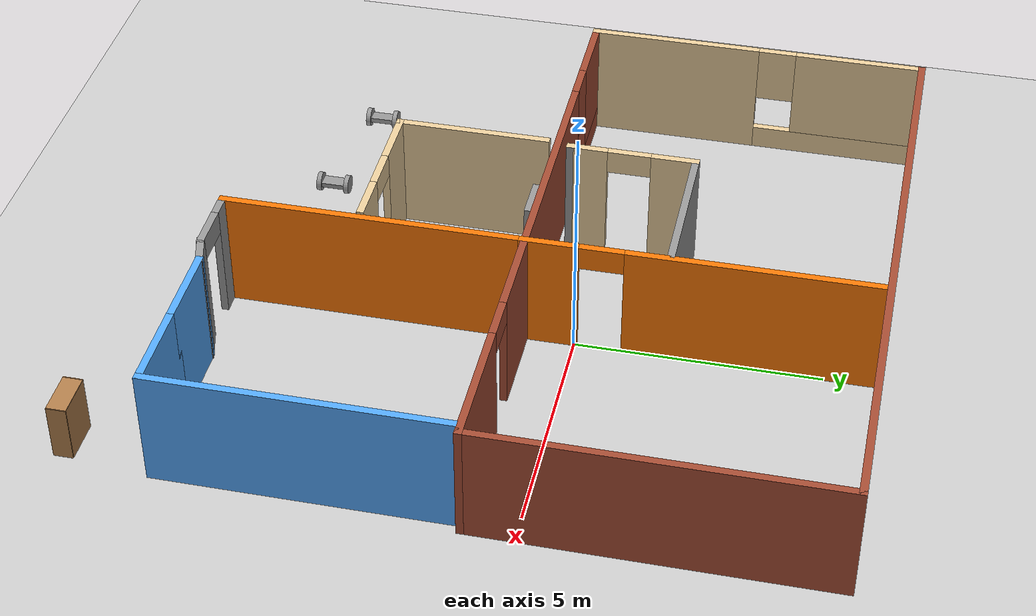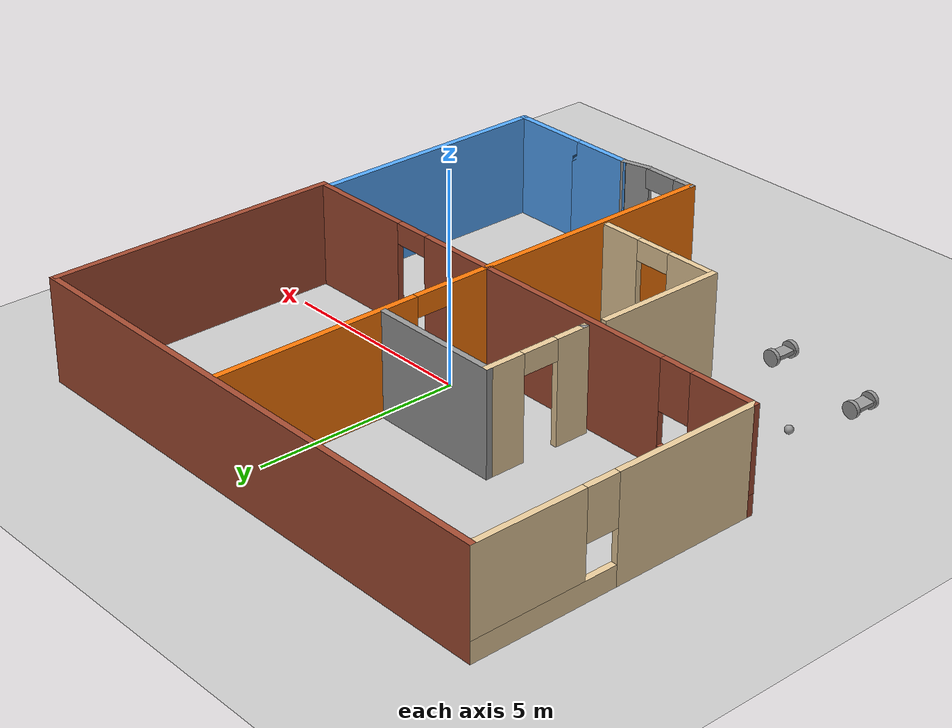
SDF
<sdf version="1.6">
 <world name="default">
  <plugin name="hello" filename="libhello.so"/>
  <light name="sun" type="directional">
   <pose>0 0 10 0 -0 0</pose>
   <diffuse>0.8 0.8 0.8 1</diffuse>
   <specular>0.2 0.2 0.2 1</specular>
   <attenuation>
    <range>1000</range>
    <constant>0.9</constant>
    <linear>0.01</linear>
    <quadratic>0.001</quadratic>
   </attenuation>
   <direction>-0.5 0.1 -0.9</direction>
  </light>
  <model name="ground_plane">
   <static>1</static>
   <link name="link">
    <collision name="collision">
     <geometry><plane><normal>0 0 1</normal><size>100 100</size></plane></geometry>
     <surface>
      <contact><collide_bitmask>65535</collide_bitmask></contact>
      <friction><ode><mu>100</mu><mu2>50</mu2></ode></friction>
     </surface>
    </collision>
    <visual name="visual">
     <cast_shadows>0</cast_shadows>
     <geometry><plane><normal>0 0 1</normal><size>100 100</size></plane></geometry>
     <material>
      <script><uri>file://media/materials/scripts/gazebo.material</uri><name>Gazebo/Grey</name></script>
     </material>
    </visual>
   </link>
  </model>
  <gravity>0 0 -9.8</gravity>
  <magnetic_field>6e-06 2.3e-05 -4.2e-05</magnetic_field>
  <atmosphere type="adiabatic"/>
  <physics name="default_physics" default="0" type="ode">
   <max_step_size>0.001</max_step_size>
   <real_time_factor>1</real_time_factor>
   <real_time_update_rate>1000</real_time_update_rate>
  </physics>
  <scene><ambient>0.4 0.4 0.4 1</ambient><background>0.7 0.7 0.7 1</background><shadows>1</shadows></scene>
  <spherical_coordinates>
   <surface_model>EARTH_WGS84</surface_model>
   <latitude_deg>0</latitude_deg>
   <longitude_deg>0</longitude_deg>
   <elevation>0</elevation>
   <heading_deg>0</heading_deg>
  </spherical_coordinates>
  <model name="Home">
   <pose>-1.01079 -0.552783 0 0 -0 0</pose>
   <link name="Door_3">
    <collision name="Door_3_Collision">
     <geometry><box><size>0.9 0.17 2</size></box></geometry>
     <pose>0 0 1 0 -0 0</pose>
    </collision>
    <visual name="Door_3_Visual">
     <pose>0 0 1 0 -0 0</pose>
     <geometry><box><size>0.9 0.17 2</size></box></geometry>
     <material>
      <script><uri>file://media/materials/scripts/gazebo.material</uri><name>Gazebo/Grey</name></script>
     </material>
    </visual>
    <pose>-0.975524 -0.723427 0 0 -0 0</pose>
   </link>
   <link name="Wall_15">
    <collision name="Wall_15_Collision">
     <geometry><box><size>13.25 0.15 2.5</size></box></geometry>
     <pose>0 0 1.25 0 -0 0</pose>
    </collision>
    <visual name="Wall_15_Visual">
     <pose>0 0 1.25 0 -0 0</pose>
     <geometry><box><size>13.25 0.15 2.5</size></box></geometry>
     <material>
      <script><uri>file://media/materials/scripts/gazebo.material</uri><name>Gazebo/Bricks</name></script>
      <ambient>1 0.764706 0.305882 1</ambient>
     </material>
     <meta><layer>0</layer></meta>
    </visual>
    <pose>0 6.63211 0 0 -0 0</pose>
   </link>
   <link name="Wall_16">
    <collision name="Wall_16_Collision">
     <geometry><box><size>7.25 0.15 2.5</size></box></geometry>
     <pose>0 0 1.25 0 -0 0</pose>
    </collision>
    <visual name="Wall_16_Visual">
     <pose>0 0 1.25 0 -0 0</pose>
     <geometry><box><size>7.25 0.15 2.5</size></box></geometry>
     <material>
      <script><uri>file://media/materials/scripts/gazebo.material</uri><name>Gazebo/Bricks</name></script>
      <ambient>1 0.764706 0.305882 1</ambient>
     </material>
     <meta><layer>0</layer></meta>
    </visual>
    <pose>6.55 3.08211 0 0 0 -1.5708</pose>
   </link>
   <link name="Wall_17">
    <pose>0 -0.467893 0 0 -0 3.14159</pose>
    <visual name="Wall_17_Visual_0">
     <pose>-5.23558 0 1.25 0 -0 0</pose>
     <geometry><box><size>2.77884 0.15 2.5</size></box></geometry>
     <material>
      <script><uri>file://media/materials/scripts/gazebo.material</uri><name>Gazebo/Bricks</name></script>
      <ambient>0.921569 0.807843 0.615686 1</ambient>
     </material>
     <meta><layer>0</layer></meta>
    </visual>
    <collision name="Wall_17_Collision_0">
     <geometry><box><size>2.77884 0.15 2.5</size></box></geometry>
     <pose>-5.23558 0 1.25 0 -0 0</pose>
    </collision>
    <visual name="Wall_17_Visual_1">
     <pose>0.607303 0 1.25 0 -0 0</pose>
     <geometry><box><size>7.10693 0.15 2.5</size></box></geometry>
     <material>
      <script><uri>file://media/materials/scripts/gazebo.material</uri><name>Gazebo/Bricks</name></script>
      <ambient>0.921569 0.807843 0.615686 1</ambient>
     </material>
     <meta><layer>0</layer></meta>
    </visual>
    <collision name="Wall_17_Collision_1">
     <geometry><box><size>7.10693 0.15 2.5</size></box></geometry>
     <pose>0.607303 0 1.25 0 -0 0</pose>
    </collision>
    <visual name="Wall_17_Visual_2">
     <pose>5.39288 0 0.25 0 -0 0</pose>
     <geometry><box><size>2.46423 0.15 0.5</size></box></geometry>
     <material>
      <script><uri>file://media/materials/scripts/gazebo.material</uri><name>Gazebo/Bricks</name></script>
      <ambient>0.921569 0.807843 0.615686 1</ambient>
     </material>
     <meta><layer>0</layer></meta>
    </visual>
    <collision name="Wall_17_Collision_2">
     <geometry><box><size>2.46423 0.15 0.5</size></box></geometry>
     <pose>5.39288 0 0.25 0 -0 0</pose>
    </collision>
    <visual name="Wall_17_Visual_3">
     <pose>5.79288 0 1.5 0 -0 0</pose>
     <geometry><box><size>1.66423 0.15 2</size></box></geometry>
     <material>
      <script><uri>file://media/materials/scripts/gazebo.material</uri><name>Gazebo/Bricks</name></script>
      <ambient>0.921569 0.807843 0.615686 1</ambient>
     </material>
     <meta><layer>0</layer></meta>
    </visual>
    <collision name="Wall_17_Collision_3">
     <geometry><box><size>1.66423 0.15 2</size></box></geometry>
     <pose>5.79288 0 1.5 0 -0 0</pose>
    </collision>
    <visual name="Wall_17_Visual_4">
     <pose>4.56077 0 1.9 0 -0 0</pose>
     <geometry><box><size>0.8 0.15 1.2</size></box></geometry>
     <material>
      <script><uri>file://media/materials/scripts/gazebo.material</uri><name>Gazebo/Bricks</name></script>
      <ambient>0.921569 0.807843 0.615686 1</ambient>
     </material>
     <meta><layer>0</layer></meta>
    </visual>
    <collision name="Wall_17_Collision_4">
     <geometry><box><size>0.8 0.15 1.2</size></box></geometry>
     <pose>4.56077 0 1.9 0 -0 0</pose>
    </collision>
    <visual name="Wall_17_Visual_5">
     <pose>-3.39616 0 2.25 0 -0 0</pose>
     <geometry><box><size>0.9 0.15 0.5</size></box></geometry>
     <material>
      <script><uri>file://media/materials/scripts/gazebo.material</uri><name>Gazebo/Bricks</name></script>
      <ambient>0.921569 0.807843 0.615686 1</ambient>
     </material>
     <meta><layer>0</layer></meta>
    </visual>
    <collision name="Wall_17_Collision_5">
     <geometry><box><size>0.9 0.15 0.5</size></box></geometry>
     <pose>-3.39616 0 2.25 0 -0 0</pose>
    </collision>
   </link>
   <link name="Wall_18">
    <pose>-6.55 3.08211 0 0 -0 1.5708</pose>
    <visual name="Wall_18_Visual_0">
     <pose>-1.78725 0 1.25 0 -0 0</pose>
     <geometry><box><size>3.6755 0.15 2.5</size></box></geometry>
     <material>
      <script><uri>file://media/materials/scripts/gazebo.material</uri><name>Gazebo/Grey</name></script>
      <ambient>0.921569 0.807843 0.615686 1</ambient>
     </material>
     <meta><layer>0</layer></meta>
    </visual>
    <collision name="Wall_18_Collision_0">
     <geometry><box><size>3.6755 0.15 2.5</size></box></geometry>
     <pose>-1.78725 0 1.25 0 -0 0</pose>
    </collision>
    <visual name="Wall_18_Visual_1">
     <pose>1.83775 0 0.25 0 -0 0</pose>
     <geometry><box><size>3.5745 0.15 0.5</size></box></geometry>
     <material>
      <script><uri>file://media/materials/scripts/gazebo.material</uri><name>Gazebo/Grey</name></script>
      <ambient>0.921569 0.807843 0.615686 1</ambient>
     </material>
     <meta><layer>0</layer></meta>
    </visual>
    <collision name="Wall_18_Collision_1">
     <geometry><box><size>3.5745 0.15 0.5</size></box></geometry>
     <pose>1.83775 0 0.25 0 -0 0</pose>
    </collision>
    <visual name="Wall_18_Visual_2">
     <pose>2.23775 0 1.5 0 -0 0</pose>
     <geometry><box><size>2.7745 0.15 2</size></box></geometry>
     <material>
      <script><uri>file://media/materials/scripts/gazebo.material</uri><name>Gazebo/Grey</name></script>
      <ambient>0.921569 0.807843 0.615686 1</ambient>
     </material>
     <meta><layer>0</layer></meta>
    </visual>
    <collision name="Wall_18_Collision_2">
     <geometry><box><size>2.7745 0.15 2</size></box></geometry>
     <pose>2.23775 0 1.5 0 -0 0</pose>
    </collision>
    <visual name="Wall_18_Visual_3">
     <pose>0.450499 0 1.9 0 -0 0</pose>
     <geometry><box><size>0.8 0.15 1.2</size></box></geometry>
     <material>
      <script><uri>file://media/materials/scripts/gazebo.material</uri><name>Gazebo/Grey</name></script>
      <ambient>0.921569 0.807843 0.615686 1</ambient>
     </material>
     <meta><layer>0</layer></meta>
    </visual>
    <collision name="Wall_18_Collision_3">
     <geometry><box><size>0.8 0.15 1.2</size></box></geometry>
     <pose>0.450499 0 1.9 0 -0 0</pose>
    </collision>
   </link>
   <link name="Wall_20">
    <collision name="Wall_20_Collision">
     <geometry><box><size>6.25 0.15 2.5</size></box></geometry>
     <pose>0 0 1.25 0 -0 0</pose>
    </collision>
    <visual name="Wall_20_Visual">
     <pose>0 0 1.25 0 -0 0</pose>
     <geometry><box><size>6.25 0.15 2.5</size></box></geometry>
     <material>
      <script><uri>file://media/materials/scripts/gazebo.material</uri><name>Gazebo/Grey</name></script>
      <ambient>0.996078 0.47451 0.0196078 1</ambient>
     </material>
     <meta><layer>0</layer></meta>
    </visual>
    <pose>0.990578 -3.56525 0 0 0 -1.5708</pose>
   </link>
   <link name="Wall_21">
    <pose>1.66558 -6.61525 0 0 -0 0</pose>
    <visual name="Wall_21_Visual_0">
     <pose>-0.474888 0 1.25 0 -0 0</pose>
     <geometry><box><size>0.550224 0.15 2.5</size></box></geometry>
     <material>
      <script><uri>file://media/materials/scripts/gazebo.material</uri><name>Gazebo/Grey</name></script>
      <ambient>1 1 1 1</ambient>
     </material>
     <meta><layer>0</layer></meta>
    </visual>
    <collision name="Wall_21_Collision_0">
     <geometry><box><size>0.550224 0.15 2.5</size></box></geometry>
     <pose>-0.474888 0 1.25 0 -0 0</pose>
    </collision>
    <visual name="Wall_21_Visual_1">
     <pose>0.725112 0 1.25 0 -0 0</pose>
     <geometry><box><size>0.049776 0.15 2.5</size></box></geometry>
     <material>
      <script><uri>file://media/materials/scripts/gazebo.material</uri><name>Gazebo/Grey</name></script>
      <ambient>1 1 1 1</ambient>
     </material>
     <meta><layer>0</layer></meta>
    </visual>
    <collision name="Wall_21_Collision_1">
     <geometry><box><size>0.049776 0.15 2.5</size></box></geometry>
     <pose>0.725112 0 1.25 0 -0 0</pose>
    </collision>
    <visual name="Wall_21_Visual_2">
     <pose>0.250224 0 2.25 0 -0 0</pose>
     <geometry><box><size>0.9 0.15 0.5</size></box></geometry>
     <material>
      <script><uri>file://media/materials/scripts/gazebo.material</uri><name>Gazebo/Grey</name></script>
      <ambient>1 1 1 1</ambient>
     </material>
     <meta><layer>0</layer></meta>
    </visual>
    <collision name="Wall_21_Collision_2">
     <geometry><box><size>0.9 0.15 0.5</size></box></geometry>
     <pose>0.250224 0 2.25 0 -0 0</pose>
    </collision>
   </link>
   <link name="Wall_22">
    <collision name="Wall_22_Collision">
     <geometry><box><size>0.75 0.15 2.5</size></box></geometry>
     <pose>0 0 1.25 0 -0 0</pose>
    </collision>
    <visual name="Wall_22_Visual">
     <pose>0 0 1.25 0 -0 0</pose>
     <geometry><box><size>0.75 0.15 2.5</size></box></geometry>
     <material>
      <script><uri>file://media/materials/scripts/gazebo.material</uri><name>Gazebo/Grey</name></script>
      <ambient>1 1 1 1</ambient>
     </material>
     <meta><layer>0</layer></meta>
    </visual>
    <pose>2.63036 -6.53761 0 0 -0 0.261799</pose>
   </link>
   <link name="Wall_23">
    <collision name="Wall_23_Collision">
     <geometry><box><size>1.75 0.15 2.5</size></box></geometry>
     <pose>0 0 1.25 0 -0 0</pose>
    </collision>
    <visual name="Wall_23_Visual">
     <pose>0 0 1.25 0 -0 0</pose>
     <geometry><box><size>1.75 0.15 2.5</size></box></geometry>
     <material>
      <script><uri>file://media/materials/scripts/gazebo.material</uri><name>Gazebo/Grey</name></script>
      <ambient>0.333333 0.666667 1 1</ambient>
     </material>
     <meta><layer>0</layer></meta>
    </visual>
    <pose>3.72013 -6.45996 0 0 -0 0</pose>
   </link>
   <link name="Wall_25">
    <collision name="Wall_25_Collision">
     <geometry><box><size>2 0.15 2.5</size></box></geometry>
     <pose>0 0 1.25 0 -0 0</pose>
    </collision>
    <visual name="Wall_25_Visual">
     <pose>0 0 1.25 0 -0 0</pose>
     <geometry><box><size>2 0.15 2.5</size></box></geometry>
     <material>
      <script><uri>file://media/materials/scripts/gazebo.material</uri><name>Gazebo/Grey</name></script>
      <ambient>0.333333 0.666667 1 1</ambient>
     </material>
     <meta><layer>0</layer></meta>
    </visual>
    <pose>5.44513 -6.45996 0 0 -0 0</pose>
   </link>
   <link name="Wall_26">
    <collision name="Wall_26_Collision">
     <geometry><box><size>6 0.15 2.5</size></box></geometry>
     <pose>0 0 1.25 0 -0 0</pose>
    </collision>
    <visual name="Wall_26_Visual">
     <pose>0 0 1.25 0 -0 0</pose>
     <geometry><box><size>6 0.15 2.5</size></box></geometry>
     <material>
      <script><uri>file://media/materials/scripts/gazebo.material</uri><name>Gazebo/Grey</name></script>
      <ambient>0.333333 0.666667 1 1</ambient>
     </material>
     <meta><layer>0</layer></meta>
    </visual>
    <pose>6.37013 -3.53496 0 0 -0 1.5708</pose>
   </link>
   <link name="Wall_28">
    <collision name="Wall_28_Collision">
     <geometry><box><size>3.25 0.15 2.5</size></box></geometry>
     <pose>0 0 1.25 0 -0 0</pose>
    </collision>
    <visual name="Wall_28_Visual">
     <pose>0 0 1.25 0 -0 0</pose>
     <geometry><box><size>3.25 0.15 2.5</size></box></geometry>
     <material>
      <script><uri>file://media/materials/scripts/gazebo.material</uri><name>Gazebo/Grey</name></script>
      <ambient>0.921569 0.807843 0.615686 1</ambient>
     </material>
     <meta><layer>0</layer></meta>
    </visual>
    <pose>-2.3171 -2.27343 0 0 0 -1.5708</pose>
   </link>
   <link name="Wall_29">
    <pose>-0.767099 -3.82343 0 0 -0 0</pose>
    <visual name="Wall_29_Visual_0">
     <pose>-0.968233 0 1.25 0 -0 0</pose>
     <geometry><box><size>1.31353 0.15 2.5</size></box></geometry>
     <material>
      <script><uri>file://media/materials/scripts/gazebo.material</uri><name>Gazebo/Grey</name></script>
      <ambient>0.921569 0.807843 0.615686 1</ambient>
     </material>
     <meta><layer>0</layer></meta>
    </visual>
    <collision name="Wall_29_Collision_0">
     <geometry><box><size>1.31353 0.15 2.5</size></box></geometry>
     <pose>-0.968233 0 1.25 0 -0 0</pose>
    </collision>
    <visual name="Wall_29_Visual_1">
     <pose>1.10677 0 1.25 0 -0 0</pose>
     <geometry><box><size>1.03647 0.15 2.5</size></box></geometry>
     <material>
      <script><uri>file://media/materials/scripts/gazebo.material</uri><name>Gazebo/Grey</name></script>
      <ambient>0.921569 0.807843 0.615686 1</ambient>
     </material>
     <meta><layer>0</layer></meta>
    </visual>
    <collision name="Wall_29_Collision_1">
     <geometry><box><size>1.03647 0.15 2.5</size></box></geometry>
     <pose>1.10677 0 1.25 0 -0 0</pose>
    </collision>
    <visual name="Wall_29_Visual_2">
     <pose>0.138534 0 2.25 0 -0 0</pose>
     <geometry><box><size>0.9 0.15 0.5</size></box></geometry>
     <material>
      <script><uri>file://media/materials/scripts/gazebo.material</uri><name>Gazebo/Grey</name></script>
      <ambient>0.921569 0.807843 0.615686 1</ambient>
     </material>
     <meta><layer>0</layer></meta>
    </visual>
    <collision name="Wall_29_Collision_2">
     <geometry><box><size>0.9 0.15 0.5</size></box></geometry>
     <pose>0.138534 0 2.25 0 -0 0</pose>
    </collision>
   </link>
   <link name="Wall_31">
    <pose>0.979013 2.98904 0 0 0 -1.5675</pose>
    <visual name="Wall_31_Visual_0">
     <pose>-1.04875 0 1.25 0 -0 0</pose>
     <geometry><box><size>5.06112 0.15 2.5</size></box></geometry>
     <material>
      <script><uri>file://media/materials/scripts/gazebo.material</uri><name>Gazebo/Grey</name></script>
      <ambient>0.996078 0.47451 0.0196078 1</ambient>
     </material>
     <meta><layer>0</layer></meta>
    </visual>
    <collision name="Wall_31_Collision_0">
     <geometry><box><size>5.06112 0.15 2.5</size></box></geometry>
     <pose>-1.04875 0 1.25 0 -0 0</pose>
    </collision>
    <visual name="Wall_31_Visual_1">
     <pose>2.98056 0 1.25 0 -0 0</pose>
     <geometry><box><size>1.19749 0.15 2.5</size></box></geometry>
     <material>
      <script><uri>file://media/materials/scripts/gazebo.material</uri><name>Gazebo/Grey</name></script>
      <ambient>0.996078 0.47451 0.0196078 1</ambient>
     </material>
     <meta><layer>0</layer></meta>
    </visual>
    <collision name="Wall_31_Collision_1">
     <geometry><box><size>1.19749 0.15 2.5</size></box></geometry>
     <pose>2.98056 0 1.25 0 -0 0</pose>
    </collision>
    <visual name="Wall_31_Visual_2">
     <pose>1.93182 0 2.25 0 -0 0</pose>
     <geometry><box><size>0.9 0.15 0.5</size></box></geometry>
     <material>
      <script><uri>file://media/materials/scripts/gazebo.material</uri><name>Gazebo/Grey</name></script>
      <ambient>0.996078 0.47451 0.0196078 1</ambient>
     </material>
     <meta><layer>0</layer></meta>
    </visual>
    <collision name="Wall_31_Collision_2">
     <geometry><box><size>0.9 0.15 0.5</size></box></geometry>
     <pose>1.93182 0 2.25 0 -0 0</pose>
    </collision>
   </link>
   <link name="Wall_33">
    <collision name="Wall_33_Collision">
     <geometry><box><size>3.25 0.15 2.5</size></box></geometry>
     <pose>0 0 1.25 0 -0 0</pose>
    </collision>
    <visual name="Wall_33_Visual">
     <pose>0 0 1.25 0 -0 0</pose>
     <geometry><box><size>3.25 0.15 2.5</size></box></geometry>
     <material>
      <script><uri>file://media/materials/scripts/gazebo.material</uri><name>Gazebo/Grey</name></script>
      <ambient>1 1 1 1</ambient>
     </material>
     <meta><layer>0</layer></meta>
    </visual>
    <pose>-0.675075 2.3992 0 0 -0 3.14159</pose>
   </link>
   <link name="Wall_34">
    <pose>-2.22507 1.0992 0 0 0 -1.5708</pose>
    <visual name="Wall_34_Visual_0">
     <pose>-0.880147 0 1.25 0 -0 0</pose>
     <geometry><box><size>0.989706 0.15 2.5</size></box></geometry>
     <material>
      <script><uri>file://media/materials/scripts/gazebo.material</uri><name>Gazebo/Grey</name></script>
      <ambient>0.921569 0.807843 0.615686 1</ambient>
     </material>
     <meta><layer>0</layer></meta>
    </visual>
    <collision name="Wall_34_Collision_0">
     <geometry><box><size>0.989706 0.15 2.5</size></box></geometry>
     <pose>-0.880147 0 1.25 0 -0 0</pose>
    </collision>
    <visual name="Wall_34_Visual_1">
     <pose>0.944853 0 1.25 0 -0 0</pose>
     <geometry><box><size>0.860294 0.15 2.5</size></box></geometry>
     <material>
      <script><uri>file://media/materials/scripts/gazebo.material</uri><name>Gazebo/Grey</name></script>
      <ambient>0.921569 0.807843 0.615686 1</ambient>
     </material>
     <meta><layer>0</layer></meta>
    </visual>
    <collision name="Wall_34_Collision_1">
     <geometry><box><size>0.860294 0.15 2.5</size></box></geometry>
     <pose>0.944853 0 1.25 0 -0 0</pose>
    </collision>
    <visual name="Wall_34_Visual_2">
     <pose>0.064706 0 2.25 0 -0 0</pose>
     <geometry><box><size>0.9 0.15 0.5</size></box></geometry>
     <material>
      <script><uri>file://media/materials/scripts/gazebo.material</uri><name>Gazebo/Grey</name></script>
      <ambient>0.921569 0.807843 0.615686 1</ambient>
     </material>
     <meta><layer>0</layer></meta>
    </visual>
    <collision name="Wall_34_Collision_2">
     <geometry><box><size>0.9 0.15 0.5</size></box></geometry>
     <pose>0.064706 0 2.25 0 -0 0</pose>
    </collision>
   </link>
   <link name="Wall_35">
    <collision name="Wall_35_Collision">
     <geometry><box><size>0.15 0.15 2.5</size></box></geometry>
     <pose>0 0 1.25 0 -0 0</pose>
    </collision>
    <visual name="Wall_35_Visual">
     <pose>0 0 1.25 0 -0 0</pose>
     <geometry><box><size>0.15 0.15 2.5</size></box></geometry>
     <material>
      <script><uri>file://media/materials/scripts/gazebo.material</uri><name>Gazebo/Grey</name></script>
      <ambient>1 1 1 1</ambient>
     </material>
     <meta><layer>0</layer></meta>
    </visual>
    <pose>-2.22507 -0.200795 0 0 -0 0</pose>
   </link>
   <link name="Wall_36">
    <collision name="Wall_36_Collision">
     <geometry><box><size>0.15 0.15 2.5</size></box></geometry>
     <pose>0 0 1.25 0 -0 0</pose>
    </collision>
    <visual name="Wall_36_Visual">
     <pose>0 0 1.25 0 -0 0</pose>
     <geometry><box><size>0.15 0.15 2.5</size></box></geometry>
     <material>
      <script><uri>file://media/materials/scripts/gazebo.material</uri><name>Gazebo/Grey</name></script>
      <ambient>1 1 1 1</ambient>
     </material>
     <meta><layer>0</layer></meta>
    </visual>
    <pose>-2.22507 -0.200795 0 0 -0 0</pose>
   </link>
   <static>1</static>
  </model>
  <model name="MyRobot">
   <link name="link_0">
    <inertial>
     <mass>1</mass>
     <inertia>
      <ixx>0.166667</ixx>
      <ixy>0</ixy>
      <ixz>0</ixz>
      <iyy>0.166667</iyy>
      <iyz>0</iyz>
      <izz>0.166667</izz>
     </inertia>
    </inertial>
    <visual name="visual">
     <geometry><box><size>0.3 0.5 0.1</size></box></geometry>
     <material>
      <lighting>1</lighting>
      <script><uri>file://media/materials/scripts/gazebo.material</uri><name>Gazebo/Grey</name></script>
      <shader type="pixel"><normal_map>__default__</normal_map></shader>
      <ambient>0.3 0.3 0.3 1</ambient>
      <diffuse>0.7 0.7 0.7 1</diffuse>
      <specular>0.01 0.01 0.01 1</specular>
      <emissive>0 0 0 1</emissive>
     </material>
    </visual>
    <collision name="collision">
     <geometry><box><size>0.3 0.5 0.1</size></box></geometry>
     <surface>
      <friction>
       <ode><mu>1</mu><mu2>1</mu2><fdir1>0 0 0</fdir1><slip1>0</slip1><slip2>0</slip2></ode>
       <torsional>
        <coefficient>1</coefficient>
        <patch_radius>0</patch_radius>
        <surface_radius>0</surface_radius>
        <use_patch_radius>1</use_patch_radius>
        <ode><slip>0</slip></ode>
       </torsional>
      </friction>
      <bounce><restitution_coefficient>0</restitution_coefficient><threshold>1e+06</threshold></bounce>
      <contact>
       <collide_without_contact>0</collide_without_contact>
       <collide_without_contact_bitmask>1</collide_without_contact_bitmask>
       <collide_bitmask>1</collide_bitmask>
       <ode>
        <soft_cfm>0</soft_cfm>
        <soft_erp>0.2</soft_erp>
        <kp>1e+13</kp>
        <kd>1</kd>
        <max_vel>0.01</max_vel>
        <min_depth>0</min_depth>
       </ode>
       <bullet>
        <split_impulse>1</split_impulse>
        <split_impulse_penetration_threshold>-0.01</split_impulse_penetration_threshold>
        <soft_cfm>0</soft_cfm>
        <soft_erp>0.2</soft_erp>
        <kp>1e+13</kp>
        <kd>1</kd>
       </bullet>
      </contact>
     </surface>
    </collision>
   </link>
   <link name="link_1">
    <pose>0 -0.300019 0 1.5707 -0 0</pose>
    <inertial>
     <mass>1</mass>
     <inertia><ixx>0.145833</ixx><ixy>0</ixy><ixz>0</ixz><iyy>0.145833</iyy><iyz>0</iyz><izz>0.125</izz></inertia>
    </inertial>
    <visual name="visual">
     <geometry><cylinder><radius>0.2</radius><length>0.1</length></cylinder></geometry>
     <material>
      <lighting>1</lighting>
      <script><uri>file://media/materials/scripts/gazebo.material</uri><name>Gazebo/Grey</name></script>
      <shader type="pixel"><normal_map>__default__</normal_map></shader>
      <ambient>0.3 0.3 0.3 1</ambient>
      <diffuse>0.7 0.7 0.7 1</diffuse>
      <specular>0.01 0.01 0.01 1</specular>
      <emissive>0 0 0 1</emissive>
     </material>
    </visual>
    <collision name="collision">
     <geometry><cylinder><radius>0.2</radius><length>0.1</length></cylinder></geometry>
     <surface>
      <friction>
       <ode><mu>1</mu><mu2>1</mu2><fdir1>0 0 0</fdir1><slip1>0</slip1><slip2>0</slip2></ode>
       <torsional>
        <coefficient>1</coefficient>
        <patch_radius>0</patch_radius>
        <surface_radius>0</surface_radius>
        <use_patch_radius>1</use_patch_radius>
        <ode><slip>0</slip></ode>
       </torsional>
      </friction>
      <bounce><restitution_coefficient>0</restitution_coefficient><threshold>1e+06</threshold></bounce>
      <contact>
       <collide_without_contact>0</collide_without_contact>
       <collide_without_contact_bitmask>1</collide_without_contact_bitmask>
       <collide_bitmask>1</collide_bitmask>
       <ode>
        <soft_cfm>0</soft_cfm>
        <soft_erp>0.2</soft_erp>
        <kp>1e+13</kp>
        <kd>1</kd>
        <max_vel>0.01</max_vel>
        <min_depth>0</min_depth>
       </ode>
       <bullet>
        <split_impulse>1</split_impulse>
        <split_impulse_penetration_threshold>-0.01</split_impulse_penetration_threshold>
        <soft_cfm>0</soft_cfm>
        <soft_erp>0.2</soft_erp>
        <kp>1e+13</kp>
        <kd>1</kd>
       </bullet>
      </contact>
     </surface>
    </collision>
   </link>
   <link name="link_1_clone">
    <pose>0 0.300019 0 1.5707 -0 0</pose>
    <inertial>
     <mass>1</mass>
     <inertia><ixx>0.145833</ixx><ixy>0</ixy><ixz>0</ixz><iyy>0.145833</iyy><iyz>0</iyz><izz>0.125</izz></inertia>
    </inertial>
    <visual name="visual">
     <geometry><cylinder><radius>0.2</radius><length>0.1</length></cylinder></geometry>
     <material>
      <lighting>1</lighting>
      <script><uri>file://media/materials/scripts/gazebo.material</uri><name>Gazebo/Grey</name></script>
      <shader type="pixel"><normal_map>__default__</normal_map></shader>
      <ambient>0.3 0.3 0.3 1</ambient>
      <diffuse>0.7 0.7 0.7 1</diffuse>
      <specular>0.01 0.01 0.01 1</specular>
      <emissive>0 0 0 1</emissive>
     </material>
    </visual>
    <collision name="collision">
     <geometry><cylinder><radius>0.2</radius><length>0.1</length></cylinder></geometry>
     <surface>
      <friction>
       <ode><mu>1</mu><mu2>1</mu2><fdir1>0 0 0</fdir1><slip1>0</slip1><slip2>0</slip2></ode>
       <torsional>
        <coefficient>1</coefficient>
        <patch_radius>0</patch_radius>
        <surface_radius>0</surface_radius>
        <use_patch_radius>1</use_patch_radius>
        <ode><slip>0</slip></ode>
       </torsional>
      </friction>
      <bounce><restitution_coefficient>0</restitution_coefficient><threshold>1e+06</threshold></bounce>
      <contact>
       <collide_without_contact>0</collide_without_contact>
       <collide_without_contact_bitmask>1</collide_without_contact_bitmask>
       <collide_bitmask>1</collide_bitmask>
       <ode>
        <soft_cfm>0</soft_cfm>
        <soft_erp>0.2</soft_erp>
        <kp>1e+13</kp>
        <kd>1</kd>
        <max_vel>0.01</max_vel>
        <min_depth>0</min_depth>
       </ode>
       <bullet>
        <split_impulse>1</split_impulse>
        <split_impulse_penetration_threshold>-0.01</split_impulse_penetration_threshold>
        <soft_cfm>0</soft_cfm>
        <soft_erp>0.2</soft_erp>
        <kp>1e+13</kp>
        <kd>1</kd>
       </bullet>
      </contact>
     </surface>
    </collision>
   </link>
   <joint name="link_0_JOINT_0" type="revolute">
    <parent>link_0</parent>
    <child>link_1</child>
    <axis>
     <xyz>0 0 1</xyz>
     <use_parent_model_frame>0</use_parent_model_frame>
     <limit>
      <lower>-1.79769e+308</lower>
      <upper>1.79769e+308</upper>
      <effort>-1</effort>
      <velocity>-1</velocity>
     </limit>
     <dynamics>
      <spring_reference>0</spring_reference>
      <spring_stiffness>0</spring_stiffness>
      <damping>0</damping>
     </dynamics>
    </axis>
    <physics>
     <ode><limit><cfm>0</cfm><erp>0.2</erp></limit><suspension><cfm>0</cfm><erp>0.2</erp></suspension></ode>
    </physics>
   </joint>
   <joint name="link_0_JOINT_1" type="revolute">
    <parent>link_0</parent>
    <child>link_1_clone</child>
    <axis>
     <xyz>0 0 1</xyz>
     <use_parent_model_frame>0</use_parent_model_frame>
     <limit>
      <lower>-1.79769e+308</lower>
      <upper>1.79769e+308</upper>
      <effort>-1</effort>
      <velocity>-1</velocity>
     </limit>
     <dynamics>
      <spring_reference>0</spring_reference>
      <spring_stiffness>0</spring_stiffness>
      <damping>0</damping>
     </dynamics>
    </axis>
    <physics>
     <ode><limit><cfm>0</cfm><erp>0.2</erp></limit><suspension><cfm>0</cfm><erp>0.2</erp></suspension></ode>
    </physics>
   </joint>
   <static>0</static>
   <pose>-6.47764 -5.66938 0.200005 0 -0.107571 0.007765</pose>
  </model>
  <model name="MyRobot_clone">
   <link name="link_0">
    <inertial>
     <mass>1</mass>
     <inertia>
      <ixx>0.166667</ixx>
      <ixy>0</ixy>
      <ixz>0</ixz>
      <iyy>0.166667</iyy>
      <iyz>0</iyz>
      <izz>0.166667</izz>
     </inertia>
    </inertial>
    <visual name="visual">
     <geometry><box><size>0.3 0.5 0.1</size></box></geometry>
     <material>
      <lighting>1</lighting>
      <script><uri>file://media/materials/scripts/gazebo.material</uri><name>Gazebo/Grey</name></script>
      <shader type="pixel"><normal_map>__default__</normal_map></shader>
      <ambient>0.3 0.3 0.3 1</ambient>
      <diffuse>0.7 0.7 0.7 1</diffuse>
      <specular>0.01 0.01 0.01 1</specular>
      <emissive>0 0 0 1</emissive>
     </material>
    </visual>
    <collision name="collision">
     <geometry><box><size>0.3 0.5 0.1</size></box></geometry>
     <surface>
      <friction>
       <ode><mu>1</mu><mu2>1</mu2><fdir1>0 0 0</fdir1><slip1>0</slip1><slip2>0</slip2></ode>
       <torsional>
        <coefficient>1</coefficient>
        <patch_radius>0</patch_radius>
        <surface_radius>0</surface_radius>
        <use_patch_radius>1</use_patch_radius>
        <ode><slip>0</slip></ode>
       </torsional>
      </friction>
      <bounce><restitution_coefficient>0</restitution_coefficient><threshold>1e+06</threshold></bounce>
      <contact>
       <collide_without_contact>0</collide_without_contact>
       <collide_without_contact_bitmask>1</collide_without_contact_bitmask>
       <collide_bitmask>1</collide_bitmask>
       <ode>
        <soft_cfm>0</soft_cfm>
        <soft_erp>0.2</soft_erp>
        <kp>1e+13</kp>
        <kd>1</kd>
        <max_vel>0.01</max_vel>
        <min_depth>0</min_depth>
       </ode>
       <bullet>
        <split_impulse>1</split_impulse>
        <split_impulse_penetration_threshold>-0.01</split_impulse_penetration_threshold>
        <soft_cfm>0</soft_cfm>
        <soft_erp>0.2</soft_erp>
        <kp>1e+13</kp>
        <kd>1</kd>
       </bullet>
      </contact>
     </surface>
    </collision>
   </link>
   <link name="link_1">
    <pose>0 -0.300019 0 1.5707 -0 0</pose>
    <inertial>
     <mass>1</mass>
     <inertia><ixx>0.145833</ixx><ixy>0</ixy><ixz>0</ixz><iyy>0.145833</iyy><iyz>0</iyz><izz>0.125</izz></inertia>
    </inertial>
    <visual name="visual">
     <geometry><cylinder><radius>0.2</radius><length>0.1</length></cylinder></geometry>
     <material>
      <lighting>1</lighting>
      <script><uri>file://media/materials/scripts/gazebo.material</uri><name>Gazebo/Grey</name></script>
      <shader type="pixel"><normal_map>__default__</normal_map></shader>
      <ambient>0.3 0.3 0.3 1</ambient>
      <diffuse>0.7 0.7 0.7 1</diffuse>
      <specular>0.01 0.01 0.01 1</specular>
      <emissive>0 0 0 1</emissive>
     </material>
    </visual>
    <collision name="collision">
     <geometry><cylinder><radius>0.2</radius><length>0.1</length></cylinder></geometry>
     <surface>
      <friction>
       <ode><mu>1</mu><mu2>1</mu2><fdir1>0 0 0</fdir1><slip1>0</slip1><slip2>0</slip2></ode>
       <torsional>
        <coefficient>1</coefficient>
        <patch_radius>0</patch_radius>
        <surface_radius>0</surface_radius>
        <use_patch_radius>1</use_patch_radius>
        <ode><slip>0</slip></ode>
       </torsional>
      </friction>
      <bounce><restitution_coefficient>0</restitution_coefficient><threshold>1e+06</threshold></bounce>
      <contact>
       <collide_without_contact>0</collide_without_contact>
       <collide_without_contact_bitmask>1</collide_without_contact_bitmask>
       <collide_bitmask>1</collide_bitmask>
       <ode>
        <soft_cfm>0</soft_cfm>
        <soft_erp>0.2</soft_erp>
        <kp>1e+13</kp>
        <kd>1</kd>
        <max_vel>0.01</max_vel>
        <min_depth>0</min_depth>
       </ode>
       <bullet>
        <split_impulse>1</split_impulse>
        <split_impulse_penetration_threshold>-0.01</split_impulse_penetration_threshold>
        <soft_cfm>0</soft_cfm>
        <soft_erp>0.2</soft_erp>
        <kp>1e+13</kp>
        <kd>1</kd>
       </bullet>
      </contact>
     </surface>
    </collision>
   </link>
   <link name="link_1_clone">
    <pose>0 0.300019 0 1.5707 -0 0</pose>
    <inertial>
     <mass>1</mass>
     <inertia><ixx>0.145833</ixx><ixy>0</ixy><ixz>0</ixz><iyy>0.145833</iyy><iyz>0</iyz><izz>0.125</izz></inertia>
    </inertial>
    <visual name="visual">
     <geometry><cylinder><radius>0.2</radius><length>0.1</length></cylinder></geometry>
     <material>
      <lighting>1</lighting>
      <script><uri>file://media/materials/scripts/gazebo.material</uri><name>Gazebo/Grey</name></script>
      <shader type="pixel"><normal_map>__default__</normal_map></shader>
      <ambient>0.3 0.3 0.3 1</ambient>
      <diffuse>0.7 0.7 0.7 1</diffuse>
      <specular>0.01 0.01 0.01 1</specular>
      <emissive>0 0 0 1</emissive>
     </material>
    </visual>
    <collision name="collision">
     <geometry><cylinder><radius>0.2</radius><length>0.1</length></cylinder></geometry>
     <surface>
      <friction>
       <ode><mu>1</mu><mu2>1</mu2><fdir1>0 0 0</fdir1><slip1>0</slip1><slip2>0</slip2></ode>
       <torsional>
        <coefficient>1</coefficient>
        <patch_radius>0</patch_radius>
        <surface_radius>0</surface_radius>
        <use_patch_radius>1</use_patch_radius>
        <ode><slip>0</slip></ode>
       </torsional>
      </friction>
      <bounce><restitution_coefficient>0</restitution_coefficient><threshold>1e+06</threshold></bounce>
      <contact>
       <collide_without_contact>0</collide_without_contact>
       <collide_without_contact_bitmask>1</collide_without_contact_bitmask>
       <collide_bitmask>1</collide_bitmask>
       <ode>
        <soft_cfm>0</soft_cfm>
        <soft_erp>0.2</soft_erp>
        <kp>1e+13</kp>
        <kd>1</kd>
        <max_vel>0.01</max_vel>
        <min_depth>0</min_depth>
       </ode>
       <bullet>
        <split_impulse>1</split_impulse>
        <split_impulse_penetration_threshold>-0.01</split_impulse_penetration_threshold>
        <soft_cfm>0</soft_cfm>
        <soft_erp>0.2</soft_erp>
        <kp>1e+13</kp>
        <kd>1</kd>
       </bullet>
      </contact>
     </surface>
    </collision>
   </link>
   <joint name="link_0_JOINT_0" type="revolute">
    <parent>link_0</parent>
    <child>link_1</child>
    <axis>
     <xyz>0 0 1</xyz>
     <use_parent_model_frame>0</use_parent_model_frame>
     <limit>
      <lower>-1.79769e+308</lower>
      <upper>1.79769e+308</upper>
      <effort>-1</effort>
      <velocity>-1</velocity>
     </limit>
     <dynamics>
      <spring_reference>0</spring_reference>
      <spring_stiffness>0</spring_stiffness>
      <damping>0</damping>
     </dynamics>
    </axis>
    <physics>
     <ode><limit><cfm>0</cfm><erp>0.2</erp></limit><suspension><cfm>0</cfm><erp>0.2</erp></suspension></ode>
    </physics>
   </joint>
   <joint name="link_0_JOINT_1" type="revolute">
    <parent>link_0</parent>
    <child>link_1_clone</child>
    <axis>
     <xyz>0 0 1</xyz>
     <use_parent_model_frame>0</use_parent_model_frame>
     <limit>
      <lower>-1.79769e+308</lower>
      <upper>1.79769e+308</upper>
      <effort>-1</effort>
      <velocity>-1</velocity>
     </limit>
     <dynamics>
      <spring_reference>0</spring_reference>
      <spring_stiffness>0</spring_stiffness>
      <damping>0</damping>
     </dynamics>
    </axis>
    <physics>
     <ode><limit><cfm>0</cfm><erp>0.2</erp></limit><suspension><cfm>0</cfm><erp>0.2</erp></suspension></ode>
    </physics>
   </joint>
   <static>0</static>
   <pose>-3.91323 -6.08385 0.200003 5e-06 -0.026565 0.002055</pose>
  </model>
  <model name="online_bkshelf">
   <model name="bookshelf">
    <static>1</static>
    <link name="link">
     <inertial><mass>1</mass></inertial>
     <collision name="back">
      <pose>0 0.005 0.6 0 -0 0</pose>
      <geometry><box><size>0.9 0.01 1.2</size></box></geometry>
     </collision>
     <visual name="visual1">
      <pose>0 0.005 0.6 0 -0 0</pose>
      <geometry><box><size>0.9 0.01 1.2</size></box></geometry>
      <material>
       <script><uri>file://media/materials/scripts/gazebo.material</uri><name>Gazebo/Wood</name></script>
      </material>
     </visual>
     <collision name="left_side">
      <pose>0.45 -0.195 0.6 0 -0 0</pose>
      <geometry><box><size>0.02 0.4 1.2</size></box></geometry>
     </collision>
     <visual name="visual2">
      <pose>0.45 -0.195 0.6 0 -0 0</pose>
      <geometry><box><size>0.02 0.4 1.2</size></box></geometry>
      <material>
       <script><uri>file://media/materials/scripts/gazebo.material</uri><name>Gazebo/Wood</name></script>
      </material>
     </visual>
     <collision name="right_side">
      <pose>-0.45 -0.195 0.6 0 -0 0</pose>
      <geometry><box><size>0.02 0.4 1.2</size></box></geometry>
     </collision>
     <visual name="visual3">
      <pose>-0.45 -0.195 0.6 0 -0 0</pose>
      <geometry><box><size>0.02 0.4 1.2</size></box></geometry>
      <material>
       <script><uri>file://media/materials/scripts/gazebo.material</uri><name>Gazebo/Wood</name></script>
      </material>
     </visual>
     <collision name="bottom">
      <pose>0 -0.195 0.03 0 -0 0</pose>
      <geometry><box><size>0.88 0.4 0.06</size></box></geometry>
     </collision>
     <visual name="visual4">
      <pose>0 -0.195 0.03 0 -0 0</pose>
      <geometry><box><size>0.88 0.4 0.06</size></box></geometry>
      <material>
       <script><uri>file://media/materials/scripts/gazebo.material</uri><name>Gazebo/Wood</name></script>
      </material>
     </visual>
     <collision name="top">
      <pose>0 -0.195 1.19 0 -0 0</pose>
      <geometry><box><size>0.88 0.4 0.02</size></box></geometry>
     </collision>
     <visual name="visual5">
      <pose>0 -0.195 1.19 0 -0 0</pose>
      <geometry><box><size>0.88 0.4 0.02</size></box></geometry>
      <material>
       <script><uri>file://media/materials/scripts/gazebo.material</uri><name>Gazebo/Wood</name></script>
      </material>
     </visual>
     <collision name="low_shelf">
      <pose>0 -0.195 0.43 0 -0 0</pose>
      <geometry><box><size>0.88 0.4 0.02</size></box></geometry>
     </collision>
     <visual name="visual6">
      <pose>0 -0.195 0.43 0 -0 0</pose>
      <geometry><box><size>0.88 0.4 0.02</size></box></geometry>
      <material>
       <script><uri>file://media/materials/scripts/gazebo.material</uri><name>Gazebo/Wood</name></script>
      </material>
     </visual>
     <collision name="high_shelf">
      <pose>0 -0.195 0.8 0 -0 0</pose>
      <geometry><box><size>0.88 0.4 0.02</size></box></geometry>
     </collision>
     <visual name="visual7">
      <pose>0 -0.195 0.8 0 -0 0</pose>
      <geometry><box><size>0.88 0.4 0.02</size></box></geometry>
      <material>
       <script><uri>file://media/materials/scripts/gazebo.material</uri><name>Gazebo/Wood</name></script>
      </material>
     </visual>
    </link>
    <pose>-3e-06 -2e-06 0 0 -0 0</pose>
   </model>
   <static>0</static>
   <pose>4.78311 -8.62132 0 0 -0 0</pose>
  </model>
  <model name="my_ball">
   <link name="link_0">
    <inertial>
     <mass>1</mass>
     <inertia><ixx>0.1</ixx><ixy>0</ixy><ixz>0</ixz><iyy>0.1</iyy><iyz>0</iyz><izz>0.1</izz></inertia>
    </inertial>
    <visual name="visual">
     <geometry><sphere><radius>0.1</radius></sphere></geometry>
     <material>
      <lighting>1</lighting>
      <script><uri>file://media/materials/scripts/gazebo.material</uri><name>Gazebo/Grey</name></script>
      <shader type="pixel"><normal_map>__default__</normal_map></shader>
      <ambient>1 1 1 1</ambient>
      <diffuse>1 1 1 1</diffuse>
      <specular>1 1 1 1</specular>
      <emissive>1 1 1 1</emissive>
     </material>
    </visual>
    <collision name="collision">
     <geometry><sphere><radius>0.1</radius></sphere></geometry>
     <surface>
      <friction>
       <ode><mu>1</mu><mu2>1</mu2><fdir1>0 0 0</fdir1><slip1>0</slip1><slip2>0</slip2></ode>
       <torsional>
        <coefficient>1</coefficient>
        <patch_radius>0</patch_radius>
        <surface_radius>0</surface_radius>
        <use_patch_radius>1</use_patch_radius>
        <ode><slip>0</slip></ode>
       </torsional>
      </friction>
      <bounce><restitution_coefficient>0</restitution_coefficient><threshold>1e+06</threshold></bounce>
      <contact>
       <collide_without_contact>0</collide_without_contact>
       <collide_without_contact_bitmask>1</collide_without_contact_bitmask>
       <collide_bitmask>1</collide_bitmask>
       <ode>
        <soft_cfm>0</soft_cfm>
        <soft_erp>0.2</soft_erp>
        <kp>1e+13</kp>
        <kd>1</kd>
        <max_vel>0.01</max_vel>
        <min_depth>0</min_depth>
       </ode>
       <bullet>
        <split_impulse>1</split_impulse>
        <split_impulse_penetration_threshold>-0.01</split_impulse_penetration_threshold>
        <soft_cfm>0</soft_cfm>
        <soft_erp>0.2</soft_erp>
        <kp>1e+13</kp>
        <kd>1</kd>
       </bullet>
      </contact>
     </surface>
    </collision>
   </link>
   <static>0</static>
   <pose>-6.0625 -3.92614 0.1 0 -0 0</pose>
  </model>
 </world>
</sdf>
